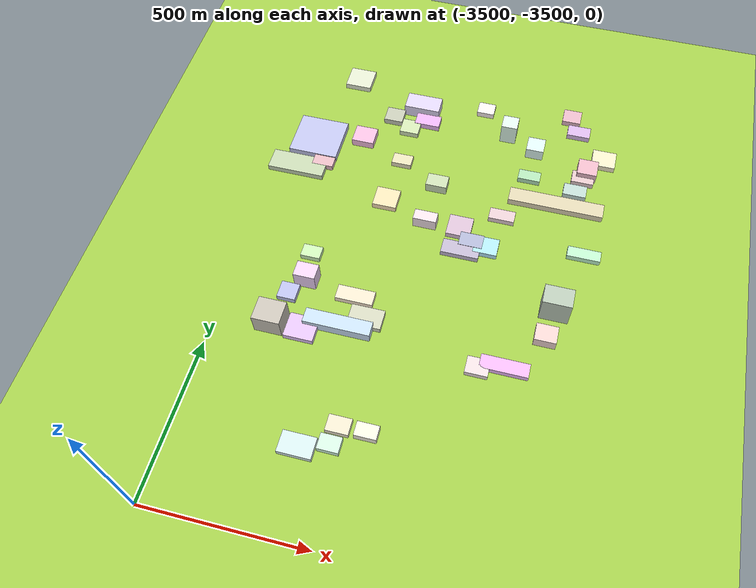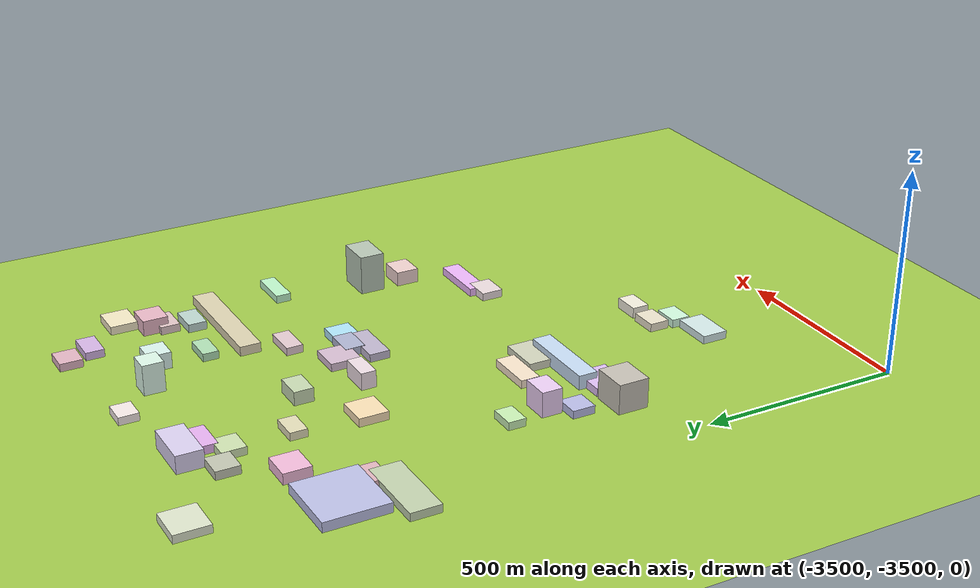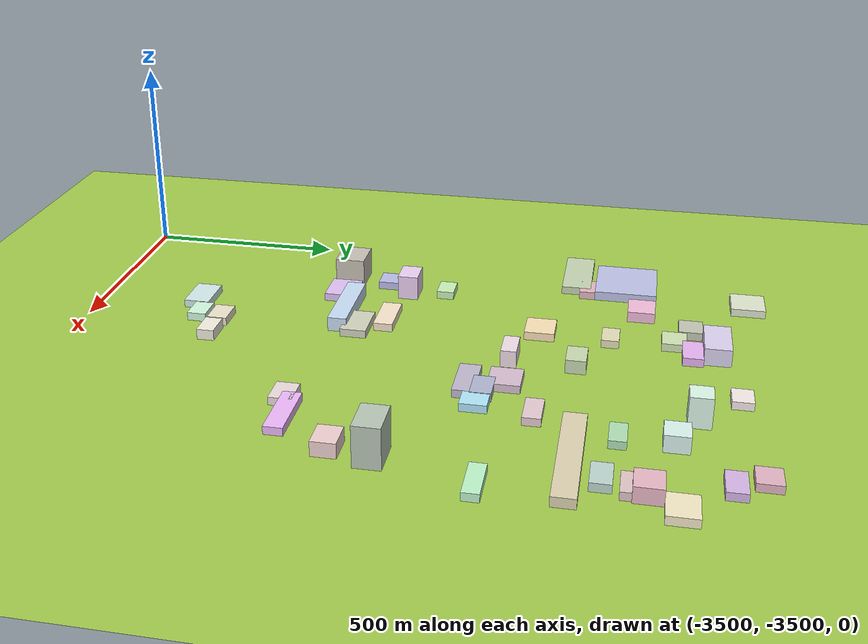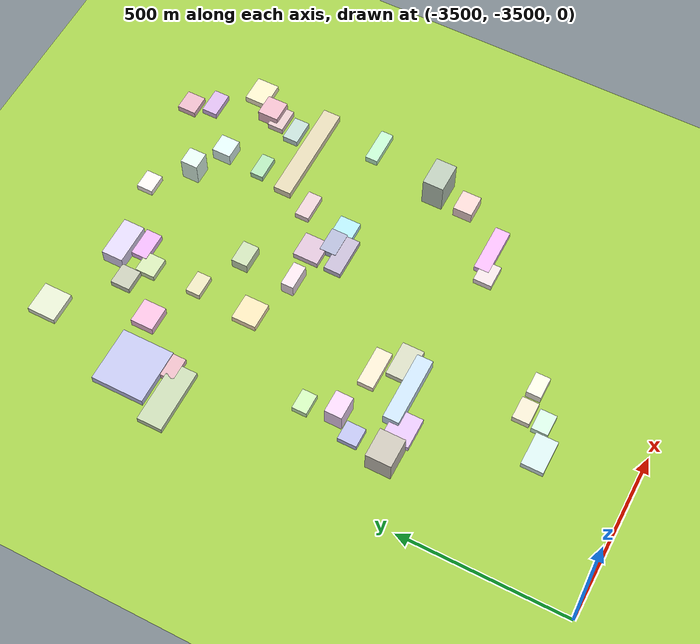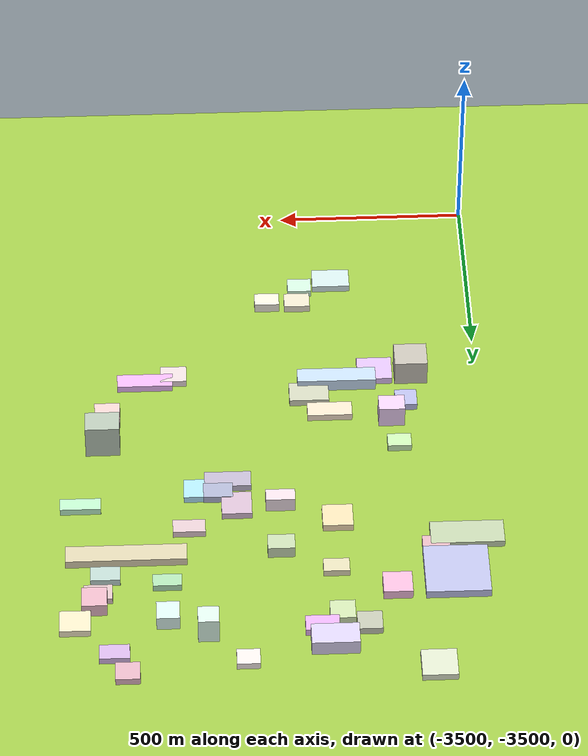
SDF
<sdf version="1.9">
 <world name="city_map">
  <model name="ground_plane">
   <static>1</static>
   <link name="link">
    <collision name="collision">
     <geometry><plane><normal>0 0 1</normal><size>11000 11000</size></plane></geometry>
    </collision>
    <visual name="visual">
     <geometry><plane><normal>0 0 1</normal><size>11000 11000</size></plane></geometry>
     <material>
      <ambient>0.551 0.712 0.210 1</ambient>
      <diffuse>0.651 0.812 0.310 1</diffuse>
      <specular>0.1 0.1 0.05 1</specular>
     </material>
    </visual>
   </link>
  </model>
  <model name="building_462771809">
   <static>1</static>
   <pose>-3401.673407640126 -2155.0084476344678 12.0 0 0 0</pose>
   <link name="link">
    <collision name="collision">
     <geometry><box><size>166.76640000075338 157.96822884926053 24.0</size></box></geometry>
    </collision>
    <visual name="visual">
     <cast_shadows>false</cast_shadows>
     <geometry><box><size>166.76640000075338 157.96822884926053 24.0</size></box></geometry>
     <material>
      <ambient>0.661 0.674 0.825 1</ambient>
      <diffuse>0.761 0.774 0.925 1</diffuse>
      <specular>0.228 0.232 0.278 1</specular>
      <emissive>0.01 0.01 0.01 1</emissive>
     </material>
    </visual>
   </link>
  </model>
  <model name="building_996043313">
   <static>1</static>
   <pose>-2555.0579119323265 -2239.709596113159 12.0 0 0 0</pose>
   <link name="link">
    <collision name="collision">
     <geometry><box><size>313.064593171548 52.747200000432315 24.0</size></box></geometry>
    </collision>
    <visual name="visual">
     <cast_shadows>false</cast_shadows>
     <geometry><box><size>313.064593171548 52.747200000432315 24.0</size></box></geometry>
     <material>
      <ambient>0.784 0.743 0.613 1</ambient>
      <diffuse>0.884 0.843 0.713 1</diffuse>
      <specular>0.265 0.253 0.214 1</specular>
      <emissive>0.01 0.01 0.01 1</emissive>
     </material>
    </visual>
   </link>
  </model>
  <model name="building_154377814">
   <static>1</static>
   <pose>-3436.651437890187 -2284.1138009460033 10.0 0 0 0</pose>
   <link name="link">
    <collision name="collision">
     <geometry><box><size>191.06372243109345 75.06930000023004 20</size></box></geometry>
    </collision>
    <visual name="visual">
     <cast_shadows>false</cast_shadows>
     <geometry><box><size>191.06372243109345 75.06930000023004 20</size></box></geometry>
     <material>
      <ambient>0.683 0.745 0.605 1</ambient>
      <diffuse>0.783 0.845 0.705 1</diffuse>
      <specular>0.235 0.254 0.211 1</specular>
      <emissive>0.01 0.01 0.01 1</emissive>
     </material>
    </visual>
   </link>
  </model>
  <model name="building_864891112">
   <static>1</static>
   <pose>-3124.9015858468542 -2851.7522002615474 18.0 0 0 0</pose>
   <link name="link">
    <collision name="collision">
     <geometry><box><size>209.52360000038084 47.590258454830106 36.0</size></box></geometry>
    </collision>
    <visual name="visual">
     <cast_shadows>false</cast_shadows>
     <geometry><box><size>209.52360000038084 47.590258454830106 36.0</size></box></geometry>
     <material>
      <ambient>0.698 0.783 0.875 1</ambient>
      <diffuse>0.798 0.883 0.975 1</diffuse>
      <specular>0.239 0.265 0.292 1</specular>
      <emissive>0.01 0.01 0.01 1</emissive>
     </material>
    </visual>
   </link>
  </model>
  <model name="building_296096974">
   <static>1</static>
   <pose>-3079.4296099272515 -1930.041783093285 22.066578120477086 0 0 0</pose>
   <link name="link">
    <collision name="collision">
     <geometry><box><size>122.47740000057661 64.676352636569 44.13315624095417</size></box></geometry>
    </collision>
    <visual name="visual">
     <cast_shadows>false</cast_shadows>
     <geometry><box><size>122.47740000057661 64.676352636569 44.13315624095417</size></box></geometry>
     <material>
      <ambient>0.778 0.740 0.863 1</ambient>
      <diffuse>0.878 0.840 0.963 1</diffuse>
      <specular>0.263 0.252 0.289 1</specular>
      <emissive>0.01 0.01 0.01 1</emissive>
     </material>
    </visual>
   </link>
  </model>
  <model name="building_330689230">
   <static>1</static>
   <pose>-3336.580532719924 -1844.919333930697 10.0 0 0 0</pose>
   <link name="link">
    <collision name="collision">
     <geometry><box><size>90.92010000011896 85.01332549061308 20</size></box></geometry>
    </collision>
    <visual name="visual">
     <cast_shadows>false</cast_shadows>
     <geometry><box><size>90.92010000011896 85.01332549061308 20</size></box></geometry>
     <material>
      <ambient>0.791 0.819 0.721 1</ambient>
      <diffuse>0.891 0.919 0.821 1</diffuse>
      <specular>0.267 0.276 0.246 1</specular>
      <emissive>0.01 0.01 0.01 1</emissive>
     </material>
    </visual>
   </link>
  </model>
  <model name="building_945610221">
   <static>1</static>
   <pose>-3228.867486741406 -2887.2250250247666 10.0 0 0 0</pose>
   <link name="link">
    <collision name="collision">
     <geometry><box><size>92.9846999997963 79.40177895436237 20</size></box></geometry>
    </collision>
    <visual name="visual">
     <cast_shadows>false</cast_shadows>
     <geometry><box><size>92.9846999997963 79.40177895436237 20</size></box></geometry>
     <material>
      <ambient>0.795 0.674 0.881 1</ambient>
      <diffuse>0.895 0.774 0.981 1</diffuse>
      <specular>0.268 0.232 0.294 1</specular>
      <emissive>0.01 0.01 0.01 1</emissive>
     </material>
    </visual>
   </link>
  </model>
  <model name="building_358191581">
   <static>1</static>
   <pose>-3049.473792610962 -2806.0823662995203 10.0 0 0 0</pose>
   <link name="link">
    <collision name="collision">
     <geometry><box><size>105.26326640745155 65.4455999997623 20</size></box></geometry>
    </collision>
    <visual name="visual">
     <cast_shadows>false</cast_shadows>
     <geometry><box><size>105.26326640745155 65.4455999997623 20</size></box></geometry>
     <material>
      <ambient>0.738 0.749 0.657 1</ambient>
      <diffuse>0.838 0.849 0.757 1</diffuse>
      <specular>0.251 0.255 0.227 1</specular>
      <emissive>0.01 0.01 0.01 1</emissive>
     </material>
    </visual>
   </link>
  </model>
  <model name="building_256566690">
   <static>1</static>
   <pose>-2611.9227235989615 -2864.312261900609 10.0 0 0 0</pose>
   <link name="link">
    <collision name="collision">
     <geometry><box><size>147.88530000015498 44.96178635165905 20</size></box></geometry>
    </collision>
    <visual name="visual">
     <cast_shadows>false</cast_shadows>
     <geometry><box><size>147.88530000015498 44.96178635165905 20</size></box></geometry>
     <material>
      <ambient>0.850 0.637 0.899 1</ambient>
      <diffuse>0.950 0.737 0.999 1</diffuse>
      <specular>0.285 0.221 0.300 1</specular>
      <emissive>0.01 0.01 0.01 1</emissive>
     </material>
    </visual>
   </link>
  </model>
  <model name="building_131014096">
   <static>1</static>
   <pose>-3325.12143392421 -2883.6789839654075 37.109156074280165 0 0 0</pose>
   <link name="link">
    <collision name="collision">
     <geometry><box><size>87.3902999998819 75.93460185890451 74.21831214856033</size></box></geometry>
    </collision>
    <visual name="visual">
     <cast_shadows>false</cast_shadows>
     <geometry><box><size>87.3902999998819 75.93460185890451 74.21831214856033</size></box></geometry>
     <material>
      <ambient>0.694 0.670 0.625 1</ambient>
      <diffuse>0.794 0.770 0.725 1</diffuse>
      <specular>0.238 0.231 0.218 1</specular>
      <emissive>0.01 0.01 0.01 1</emissive>
     </material>
    </visual>
   </link>
  </model>
  <model name="building_414322671">
   <static>1</static>
   <pose>-3127.0237411786434 -3240.528007633636 10.0 0 0 0</pose>
   <link name="link">
    <collision name="collision">
     <geometry><box><size>101.4610762277518 64.99049999996487 20</size></box></geometry>
    </collision>
    <visual name="visual">
     <cast_shadows>false</cast_shadows>
     <geometry><box><size>101.4610762277518 64.99049999996487 20</size></box></geometry>
     <material>
      <ambient>0.749 0.832 0.829 1</ambient>
      <diffuse>0.849 0.932 0.929 1</diffuse>
      <specular>0.255 0.280 0.279 1</specular>
      <emissive>0.01 0.01 0.01 1</emissive>
     </material>
    </visual>
   </link>
  </model>
  <model name="building_700991582">
   <static>1</static>
   <pose>-2823.374288869113 -2493.9753116037014 10.0 0 0 0</pose>
   <link name="link">
    <collision name="collision">
     <geometry><box><size>121.66432039803946 51.32639999960276 20</size></box></geometry>
    </collision>
    <visual name="visual">
     <cast_shadows>false</cast_shadows>
     <geometry><box><size>121.66432039803946 51.32639999960276 20</size></box></geometry>
     <material>
      <ambient>0.671 0.634 0.727 1</ambient>
      <diffuse>0.771 0.734 0.827 1</diffuse>
      <specular>0.231 0.220 0.248 1</specular>
      <emissive>0.01 0.01 0.01 1</emissive>
     </material>
    </visual>
   </link>
  </model>
  <model name="building_287217977">
   <static>1</static>
   <pose>-2844.351357390406 -2407.978027453534 10.0 0 0 0</pose>
   <link name="link">
    <collision name="collision">
     <geometry><box><size>78.98759999948624 76.56949655839588 20</size></box></geometry>
    </collision>
    <visual name="visual">
     <cast_shadows>false</cast_shadows>
     <geometry><box><size>78.98759999948624 76.56949655839588 20</size></box></geometry>
     <material>
      <ambient>0.761 0.662 0.739 1</ambient>
      <diffuse>0.861 0.762 0.839 1</diffuse>
      <specular>0.258 0.229 0.252 1</specular>
      <emissive>0.01 0.01 0.01 1</emissive>
     </material>
    </visual>
   </link>
  </model>
  <model name="building_226399305">
   <static>1</static>
   <pose>-3104.905383024889 -2354.3375447515054 10.5 0 0 0</pose>
   <link name="link">
    <collision name="collision">
     <geometry><box><size>79.41315412157432 73.64850000018919 21.0</size></box></geometry>
    </collision>
    <visual name="visual">
     <cast_shadows>false</cast_shadows>
     <geometry><box><size>79.41315412157432 73.64850000018919 21.0</size></box></geometry>
     <material>
      <ambient>0.899 0.799 0.631 1</ambient>
      <diffuse>0.999 0.899 0.731 1</diffuse>
      <specular>0.300 0.270 0.219 1</specular>
      <emissive>0.01 0.01 0.01 1</emissive>
     </material>
    </visual>
   </link>
  </model>
  <model name="building_591524489">
   <static>1</static>
   <pose>-3102.0509835425178 -2740.54166731092 10.0 0 0 0</pose>
   <link name="link">
    <collision name="collision">
     <geometry><box><size>118.72560000011134 48.218237936213 20</size></box></geometry>
    </collision>
    <visual name="visual">
     <cast_shadows>false</cast_shadows>
     <geometry><box><size>118.72560000011134 48.218237936213 20</size></box></geometry>
     <material>
      <ambient>0.891 0.814 0.717 1</ambient>
      <diffuse>0.991 0.914 0.817 1</diffuse>
      <specular>0.297 0.274 0.245 1</specular>
      <emissive>0.01 0.01 0.01 1</emissive>
     </material>
    </visual>
   </link>
  </model>
  <model name="building_331850897">
   <static>1</static>
   <pose>-2498.029354737348 -2639.8426151179997 49.68454883155245 0 0 0</pose>
   <link name="link">
    <collision name="collision">
     <geometry><box><size>90.38730000020223 62.92218979667591 99.3690976631049</size></box></geometry>
    </collision>
    <visual name="visual">
     <cast_shadows>false</cast_shadows>
     <geometry><box><size>90.38730000020223 62.92218979667591 99.3690976631049</size></box></geometry>
     <material>
      <ambient>0.635 0.694 0.626 1</ambient>
      <diffuse>0.735 0.794 0.726 1</diffuse>
      <specular>0.220 0.238 0.218 1</specular>
      <emissive>0.01 0.01 0.01 1</emissive>
     </material>
    </visual>
   </link>
  </model>
  <model name="building_455614522">
   <static>1</static>
   <pose>-2423.0557583286754 -2014.2285238648508 10.5 0 0 0</pose>
   <link name="link">
    <collision name="collision">
     <geometry><box><size>79.49819999993224 68.19134535295711 21.0</size></box></geometry>
    </collision>
    <visual name="visual">
     <cast_shadows>false</cast_shadows>
     <geometry><box><size>79.49819999993224 68.19134535295711 21.0</size></box></geometry>
     <material>
      <ambient>0.876 0.832 0.695 1</ambient>
      <diffuse>0.976 0.932 0.795 1</diffuse>
      <specular>0.293 0.279 0.238 1</specular>
      <emissive>0.01 0.01 0.01 1</emissive>
     </material>
    </visual>
   </link>
  </model>
  <model name="building_331447344">
   <static>1</static>
   <pose>-3247.1130437168667 -2111.8647795199645 13.5 0 0 0</pose>
   <link name="link">
    <collision name="collision">
     <geometry><box><size>75.43624998767997 68.09850000000495 27.0</size></box></geometry>
    </collision>
    <visual name="visual">
     <cast_shadows>false</cast_shadows>
     <geometry><box><size>75.43624998767997 68.09850000000495 27.0</size></box></geometry>
     <material>
      <ambient>0.873 0.654 0.777 1</ambient>
      <diffuse>0.973 0.754 0.877 1</diffuse>
      <specular>0.292 0.226 0.263 1</specular>
      <emissive>0.01 0.01 0.01 1</emissive>
     </material>
    </visual>
   </link>
  </model>
  <model name="building_584742397">
   <static>1</static>
   <pose>-2746.467598180311 -2462.9549171860453 10.0 0 0 0</pose>
   <link name="link">
    <collision name="collision">
     <geometry><box><size>77.77770000033257 63.00088933914077 20</size></box></geometry>
    </collision>
    <visual name="visual">
     <cast_shadows>false</cast_shadows>
     <geometry><box><size>77.77770000033257 63.00088933914077 20</size></box></geometry>
     <material>
      <ambient>0.608 0.818 0.898 1</ambient>
      <diffuse>0.708 0.918 0.998 1</diffuse>
      <specular>0.212 0.275 0.299 1</specular>
      <emissive>0.01 0.01 0.01 1</emissive>
     </material>
    </visual>
   </link>
  </model>
  <model name="building_154743931">
   <static>1</static>
   <pose>-3049.444849003317 -1986.3960535730268 10.5 0 0 0</pose>
   <link name="link">
    <collision name="collision">
     <geometry><box><size>86.6779224812775 49.01760000022648 21.0</size></box></geometry>
    </collision>
    <visual name="visual">
     <cast_shadows>false</cast_shadows>
     <geometry><box><size>86.6779224812775 49.01760000022648 21.0</size></box></geometry>
     <material>
      <ambient>0.824 0.615 0.862 1</ambient>
      <diffuse>0.924 0.715 0.962 1</diffuse>
      <specular>0.277 0.215 0.289 1</specular>
      <emissive>0.01 0.01 0.01 1</emissive>
     </material>
    </visual>
   </link>
  </model>
  <model name="building_421353681">
   <static>1</static>
   <pose>-2472.876629460694 -2079.3168240903487 19.5 0 0 0</pose>
   <link name="link">
    <collision name="collision">
     <geometry><box><size>65.57879999974148 62.908241618960915 39.0</size></box></geometry>
    </collision>
    <visual name="visual">
     <cast_shadows>false</cast_shadows>
     <geometry><box><size>65.57879999974148 62.908241618960915 39.0</size></box></geometry>
     <material>
      <ambient>0.830 0.637 0.693 1</ambient>
      <diffuse>0.930 0.737 0.793 1</diffuse>
      <specular>0.279 0.221 0.238 1</specular>
      <emissive>0.01 0.01 0.01 1</emissive>
     </material>
    </visual>
   </link>
  </model>
  <model name="building_249660384">
   <static>1</static>
   <pose>-2438.104052005342 -2417.811365467872 10.0 0 0 0</pose>
   <link name="link">
    <collision name="collision">
     <geometry><box><size>106.204799999702 38.13277486271253 20</size></box></geometry>
    </collision>
    <visual name="visual">
     <cast_shadows>false</cast_shadows>
     <geometry><box><size>106.204799999702 38.13277486271253 20</size></box></geometry>
     <material>
      <ambient>0.662 0.879 0.712 1</ambient>
      <diffuse>0.762 0.979 0.812 1</diffuse>
      <specular>0.229 0.294 0.244 1</specular>
      <emissive>0.01 0.01 0.01 1</emissive>
     </material>
    </visual>
   </link>
  </model>
  <model name="building_804649413">
   <static>1</static>
   <pose>-2510.652124044202 -2737.4034552558637 18.225252323869366 0 0 0</pose>
   <link name="link">
    <collision name="collision">
     <geometry><box><size>67.51020000022834 57.23303687041509 36.45050464773873</size></box></geometry>
    </collision>
    <visual name="visual">
     <cast_shadows>false</cast_shadows>
     <geometry><box><size>67.51020000022834 57.23303687041509 36.45050464773873</size></box></geometry>
     <material>
      <ambient>0.856 0.739 0.728 1</ambient>
      <diffuse>0.956 0.839 0.828 1</diffuse>
      <specular>0.287 0.252 0.248 1</specular>
      <emissive>0.01 0.01 0.01 1</emissive>
     </material>
    </visual>
   </link>
  </model>
  <model name="building_194214635">
   <static>1</static>
   <pose>-3102.552910805364 -2030.4838535874635 10.0 0 0 0</pose>
   <link name="link">
    <collision name="collision">
     <geometry><box><size>65.04955638602718 59.29620000046043 20</size></box></geometry>
    </collision>
    <visual name="visual">
     <cast_shadows>false</cast_shadows>
     <geometry><box><size>65.04955638602718 59.29620000046043 20</size></box></geometry>
     <material>
      <ambient>0.731 0.807 0.615 1</ambient>
      <diffuse>0.831 0.907 0.715 1</diffuse>
      <specular>0.249 0.272 0.215 1</specular>
      <emissive>0.01 0.01 0.01 1</emissive>
     </material>
    </visual>
   </link>
  </model>
  <model name="building_600677889">
   <static>1</static>
   <pose>-2688.7439943122436 -2885.0495776787284 10.0 0 0 0</pose>
   <link name="link">
    <collision name="collision">
     <geometry><box><size>69.81900000039332 55.00455762125666 20</size></box></geometry>
    </collision>
    <visual name="visual">
     <cast_shadows>false</cast_shadows>
     <geometry><box><size>69.81900000039332 55.00455762125666 20</size></box></geometry>
     <material>
      <ambient>0.838 0.779 0.787 1</ambient>
      <diffuse>0.938 0.879 0.887 1</diffuse>
      <specular>0.281 0.264 0.266 1</specular>
      <emissive>0.01 0.01 0.01 1</emissive>
     </material>
    </visual>
   </link>
  </model>
  <model name="building_179683379">
   <static>1</static>
   <pose>-2796.9720137960776 -2454.2475601802976 10.5 0 0 0</pose>
   <link name="link">
    <collision name="collision">
     <geometry><box><size>76.58999999986094 50.01933914436356 21.0</size></box></geometry>
    </collision>
    <visual name="visual">
     <cast_shadows>false</cast_shadows>
     <geometry><box><size>76.58999999986094 50.01933914436356 21.0</size></box></geometry>
     <material>
      <ambient>0.604 0.628 0.738 1</ambient>
      <diffuse>0.704 0.728 0.838 1</diffuse>
      <specular>0.211 0.218 0.251 1</specular>
      <emissive>0.01 0.01 0.01 1</emissive>
     </material>
    </visual>
   </link>
  </model>
  <model name="building_641228757">
   <static>1</static>
   <pose>-3169.495063099602 -1990.5274856287908 10.5 0 0 0</pose>
   <link name="link">
    <collision name="collision">
     <geometry><box><size>64.40220000018826 58.54878565921634 21.0</size></box></geometry>
    </collision>
    <visual name="visual">
     <cast_shadows>false</cast_shadows>
     <geometry><box><size>64.40220000018826 58.54878565921634 21.0</size></box></geometry>
     <material>
      <ambient>0.680 0.693 0.617 1</ambient>
      <diffuse>0.780 0.793 0.717 1</diffuse>
      <specular>0.234 0.238 0.215 1</specular>
      <emissive>0.01 0.01 0.01 1</emissive>
     </material>
    </visual>
   </link>
  </model>
  <model name="building_465449796">
   <static>1</static>
   <pose>-2522.3545502662673 -1909.9119127603785 10.0 0 0 0</pose>
   <link name="link">
    <collision name="collision">
     <geometry><box><size>77.67621986250002 46.20929999974521 20</size></box></geometry>
    </collision>
    <visual name="visual">
     <cast_shadows>false</cast_shadows>
     <geometry><box><size>77.67621986250002 46.20929999974521 20</size></box></geometry>
     <material>
      <ambient>0.755 0.628 0.817 1</ambient>
      <diffuse>0.855 0.728 0.917 1</diffuse>
      <specular>0.256 0.218 0.275 1</specular>
      <emissive>0.01 0.01 0.01 1</emissive>
     </material>
    </visual>
   </link>
  </model>
  <model name="building_958017289">
   <static>1</static>
   <pose>-3265.166147325916 -2715.5274419369957 31.457626090119643 0 0 0</pose>
   <link name="link">
    <collision name="collision">
     <geometry><box><size>69.16755199198221 51.703799999280875 62.915252180239285</size></box></geometry>
    </collision>
    <visual name="visual">
     <cast_shadows>false</cast_shadows>
     <geometry><box><size>69.16755199198221 51.703799999280875 62.915252180239285</size></box></geometry>
     <material>
      <ambient>0.849 0.735 0.879 1</ambient>
      <diffuse>0.949 0.835 0.979 1</diffuse>
      <specular>0.285 0.251 0.294 1</specular>
      <emissive>0.01 0.01 0.01 1</emissive>
     </material>
    </visual>
   </link>
  </model>
  <model name="building_336004337">
   <static>1</static>
   <pose>-2718.9763612102197 -2331.294702422068 10.0 0 0 0</pose>
   <link name="link">
    <collision name="collision">
     <geometry><box><size>84.4821000005993 42.29465800335122 20</size></box></geometry>
    </collision>
    <visual name="visual">
     <cast_shadows>false</cast_shadows>
     <geometry><box><size>84.4821000005993 42.29465800335122 20</size></box></geometry>
     <material>
      <ambient>0.812 0.714 0.735 1</ambient>
      <diffuse>0.912 0.814 0.835 1</diffuse>
      <specular>0.273 0.244 0.250 1</specular>
      <emissive>0.01 0.01 0.01 1</emissive>
     </material>
    </visual>
   </link>
  </model>
  <model name="building_190436853">
   <static>1</static>
   <pose>-2501.1177129014495 -2172.671347886315 10.5 0 0 0</pose>
   <link name="link">
    <collision name="collision">
     <geometry><box><size>76.43031982112417 46.73099999953223 21.0</size></box></geometry>
    </collision>
    <visual name="visual">
     <cast_shadows>false</cast_shadows>
     <geometry><box><size>76.43031982112417 46.73099999953223 21.0</size></box></geometry>
     <material>
      <ambient>0.661 0.757 0.731 1</ambient>
      <diffuse>0.761 0.857 0.831 1</diffuse>
      <specular>0.228 0.257 0.249 1</specular>
      <emissive>0.01 0.01 0.01 1</emissive>
     </material>
    </visual>
   </link>
  </model>
  <model name="building_95556149">
   <static>1</static>
   <pose>-2482.2091490580515 -2111.0976338074443 10.0 0 0 0</pose>
   <link name="link">
    <collision name="collision">
     <geometry><box><size>73.91576802014278 48.26280000008154 20</size></box></geometry>
    </collision>
    <visual name="visual">
     <cast_shadows>false</cast_shadows>
     <geometry><box><size>73.91576802014278 48.26280000008154 20</size></box></geometry>
     <material>
      <ambient>0.800 0.691 0.700 1</ambient>
      <diffuse>0.900 0.791 0.800 1</diffuse>
      <specular>0.270 0.237 0.240 1</specular>
      <emissive>0.01 0.01 0.01 1</emissive>
     </material>
    </visual>
   </link>
  </model>
  <model name="building_377144150">
   <static>1</static>
   <pose>-2555.1414031092327 -1845.4725455405007 10.0 0 0 0</pose>
   <link name="link">
    <collision name="collision">
     <geometry><box><size>62.59290000033957 56.43215036375178 20</size></box></geometry>
    </collision>
    <visual name="visual">
     <cast_shadows>false</cast_shadows>
     <geometry><box><size>62.59290000033957 56.43215036375178 20</size></box></geometry>
     <material>
      <ambient>0.806 0.625 0.682 1</ambient>
      <diffuse>0.906 0.725 0.782 1</diffuse>
      <specular>0.272 0.218 0.235 1</specular>
      <emissive>0.01 0.01 0.01 1</emissive>
     </material>
    </visual>
   </link>
  </model>
  <model name="building_274376601">
   <static>1</static>
   <pose>-3031.0625570370357 -3156.7975586445154 10.5 0 0 0</pose>
   <link name="link">
    <collision name="collision">
     <geometry><box><size>69.13080000023797 49.91180500523264 21.0</size></box></geometry>
    </collision>
    <visual name="visual">
     <cast_shadows>false</cast_shadows>
     <geometry><box><size>69.13080000023797 49.91180500523264 21.0</size></box></geometry>
     <material>
      <ambient>0.843 0.812 0.719 1</ambient>
      <diffuse>0.943 0.912 0.819 1</diffuse>
      <specular>0.283 0.274 0.246 1</specular>
      <emissive>0.01 0.01 0.01 1</emissive>
     </material>
    </visual>
   </link>
  </model>
  <model name="building_653378782">
   <static>1</static>
   <pose>-2954.8866840834303 -2254.926859422395 17.167546582484952 0 0 0</pose>
   <link name="link">
    <collision name="collision">
     <geometry><box><size>70.68480000025801 48.693091727582896 34.335093164969905</size></box></geometry>
    </collision>
    <visual name="visual">
     <cast_shadows>false</cast_shadows>
     <geometry><box><size>70.68480000025801 48.693091727582896 34.335093164969905</size></box></geometry>
     <material>
      <ambient>0.703 0.771 0.618 1</ambient>
      <diffuse>0.803 0.871 0.718 1</diffuse>
      <specular>0.241 0.261 0.215 1</specular>
      <emissive>0.01 0.01 0.01 1</emissive>
     </material>
    </visual>
   </link>
  </model>
  <model name="building_428544621">
   <static>1</static>
   <pose>-2659.28584246349 -2024.8818531825902 20.860843561877942 0 0 0</pose>
   <link name="link">
    <collision name="collision">
     <geometry><box><size>59.60700000014896 57.231631522974844 41.721687123755885</size></box></geometry>
    </collision>
    <visual name="visual">
     <cast_shadows>false</cast_shadows>
     <geometry><box><size>59.60700000014896 57.231631522974844 41.721687123755885</size></box></geometry>
     <material>
      <ambient>0.776 0.878 0.851 1</ambient>
      <diffuse>0.876 0.978 0.951 1</diffuse>
      <specular>0.263 0.293 0.285 1</specular>
      <emissive>0.01 0.01 0.01 1</emissive>
     </material>
    </visual>
   </link>
  </model>
  <model name="building_77831795">
   <static>1</static>
   <pose>-3307.253079103333 -2775.6088406773288 10.0 0 0 0</pose>
   <link name="link">
    <collision name="collision">
     <geometry><box><size>58.43040000059574 56.65922603332349 20</size></box></geometry>
    </collision>
    <visual name="visual">
     <cast_shadows>false</cast_shadows>
     <geometry><box><size>58.43040000059574 56.65922603332349 20</size></box></geometry>
     <material>
      <ambient>0.645 0.656 0.825 1</ambient>
      <diffuse>0.745 0.756 0.925 1</diffuse>
      <specular>0.224 0.227 0.277 1</specular>
      <emissive>0.01 0.01 0.01 1</emissive>
     </material>
    </visual>
   </link>
  </model>
  <model name="building_165829314">
   <static>1</static>
   <pose>-3040.099285652762 -3214.6336803033155 10.5 0 0 0</pose>
   <link name="link">
    <collision name="collision">
     <geometry><box><size>64.24679999994964 48.14170441844868 21.0</size></box></geometry>
    </collision>
    <visual name="visual">
     <cast_shadows>false</cast_shadows>
     <geometry><box><size>64.24679999994964 48.14170441844868 21.0</size></box></geometry>
     <material>
      <ambient>0.742 0.897 0.787 1</ambient>
      <diffuse>0.842 0.997 0.887 1</diffuse>
      <specular>0.252 0.299 0.266 1</specular>
      <emissive>0.01 0.01 0.01 1</emissive>
     </material>
    </visual>
   </link>
  </model>
  <model name="building_939663514">
   <static>1</static>
   <pose>-3354.592510349196 -2253.3714431670473 10.0 0 0 0</pose>
   <link name="link">
    <collision name="collision">
     <geometry><box><size>71.39520000067279 41.266821619783734 20</size></box></geometry>
    </collision>
    <visual name="visual">
     <cast_shadows>false</cast_shadows>
     <geometry><box><size>71.39520000067279 41.266821619783734 20</size></box></geometry>
     <material>
      <ambient>0.805 0.633 0.671 1</ambient>
      <diffuse>0.905 0.733 0.771 1</diffuse>
      <specular>0.272 0.220 0.231 1</specular>
      <emissive>0.01 0.01 0.01 1</emissive>
     </material>
    </visual>
   </link>
  </model>
  <model name="building_912913000">
   <static>1</static>
   <pose>-2858.639445111309 -1881.4057049953713 10.0 0 0 0</pose>
   <link name="link">
    <collision name="collision">
     <geometry><box><size>59.66250000000883 49.297415692501545 20</size></box></geometry>
    </collision>
    <visual name="visual">
     <cast_shadows>false</cast_shadows>
     <geometry><box><size>59.66250000000883 49.297415692501545 20</size></box></geometry>
     <material>
      <ambient>0.886 0.841 0.830 1</ambient>
      <diffuse>0.986 0.941 0.930 1</diffuse>
      <specular>0.296 0.282 0.279 1</specular>
      <emissive>0.01 0.01 0.01 1</emissive>
     </material>
    </visual>
   </link>
  </model>
  <model name="building_168903953">
   <static>1</static>
   <pose>-2659.1195209419916 -2146.2797085949173 10.0 0 0 0</pose>
   <link name="link">
    <collision name="collision">
     <geometry><box><size>74.3149185537047 39.5160000003969 20</size></box></geometry>
    </collision>
    <visual name="visual">
     <cast_shadows>false</cast_shadows>
     <geometry><box><size>74.3149185537047 39.5160000003969 20</size></box></geometry>
     <material>
      <ambient>0.607 0.796 0.628 1</ambient>
      <diffuse>0.707 0.896 0.728 1</diffuse>
      <specular>0.212 0.269 0.218 1</specular>
      <emissive>0.01 0.01 0.01 1</emissive>
     </material>
    </visual>
   </link>
  </model>
  <model name="building_68616514">
   <static>1</static>
   <pose>-2958.5813286863313 -2411.9192048267155 21.418819075767324 0 0 0</pose>
   <link name="link">
    <collision name="collision">
     <geometry><box><size>76.704597914564 37.72890000001894 42.83763815153465</size></box></geometry>
    </collision>
    <visual name="visual">
     <cast_shadows>false</cast_shadows>
     <geometry><box><size>76.704597914564 37.72890000001894 42.83763815153465</size></box></geometry>
     <material>
      <ambient>0.858 0.790 0.820 1</ambient>
      <diffuse>0.958 0.890 0.920 1</diffuse>
      <specular>0.287 0.267 0.276 1</specular>
      <emissive>0.01 0.01 0.01 1</emissive>
     </material>
    </visual>
   </link>
  </model>
  <model name="building_86319400">
   <static>1</static>
   <pose>-2949.058086979475 -3156.8899175339147 13.5 0 0 0</pose>
   <link name="link">
    <collision name="collision">
     <geometry><box><size>66.74057026555924 43.33439999927435 27.0</size></box></geometry>
    </collision>
    <visual name="visual">
     <cast_shadows>false</cast_shadows>
     <geometry><box><size>66.74057026555924 43.33439999927435 27.0</size></box></geometry>
     <material>
      <ambient>0.872 0.854 0.789 1</ambient>
      <diffuse>0.972 0.954 0.889 1</diffuse>
      <specular>0.291 0.286 0.267 1</specular>
      <emissive>0.01 0.01 0.01 1</emissive>
     </material>
    </visual>
   </link>
  </model>
  <model name="building_370977332">
   <static>1</static>
   <pose>-3093.819106567712 -2182.310480034069 10.0 0 0 0</pose>
   <link name="link">
    <collision name="collision">
     <geometry><box><size>67.45470000036846 42.82036254818235 20</size></box></geometry>
    </collision>
    <visual name="visual">
     <cast_shadows>false</cast_shadows>
     <geometry><box><size>67.45470000036846 42.82036254818235 20</size></box></geometry>
     <material>
      <ambient>0.812 0.787 0.643 1</ambient>
      <diffuse>0.912 0.887 0.743 1</diffuse>
      <specular>0.274 0.266 0.223 1</specular>
      <emissive>0.01 0.01 0.01 1</emissive>
     </material>
    </visual>
   </link>
  </model>
  <model name="building_670926189">
   <static>1</static>
   <pose>-2760.713514970638 -1976.8529300589698 37.94191594897157 0 0 0</pose>
   <link name="link">
    <collision name="collision">
     <geometry><box><size>53.899880716821514 52.26990000037546 75.88383189794314</size></box></geometry>
    </collision>
    <visual name="visual">
     <cast_shadows>false</cast_shadows>
     <geometry><box><size>53.899880716821514 52.26990000037546 75.88383189794314</size></box></geometry>
     <material>
      <ambient>0.787 0.890 0.829 1</ambient>
      <diffuse>0.887 0.990 0.929 1</diffuse>
      <specular>0.266 0.297 0.279 1</specular>
      <emissive>0.01 0.01 0.01 1</emissive>
     </material>
    </visual>
   </link>
  </model>
  <model name="building_512168047">
   <static>1</static>
   <pose>-3281.048857935248 -2619.464953435992 10.0 0 0 0</pose>
   <link name="link">
    <collision name="collision">
     <geometry><box><size>62.881499999768664 44.30413500995752 20</size></box></geometry>
    </collision>
    <visual name="visual">
     <cast_shadows>false</cast_shadows>
     <geometry><box><size>62.881499999768664 44.30413500995752 20</size></box></geometry>
     <material>
      <ambient>0.713 0.866 0.631 1</ambient>
      <diffuse>0.813 0.966 0.731 1</diffuse>
      <specular>0.244 0.290 0.219 1</specular>
      <emissive>0.01 0.01 0.01 1</emissive>
     </material>
    </visual>
   </link>
  </model>
 </world>
</sdf>
